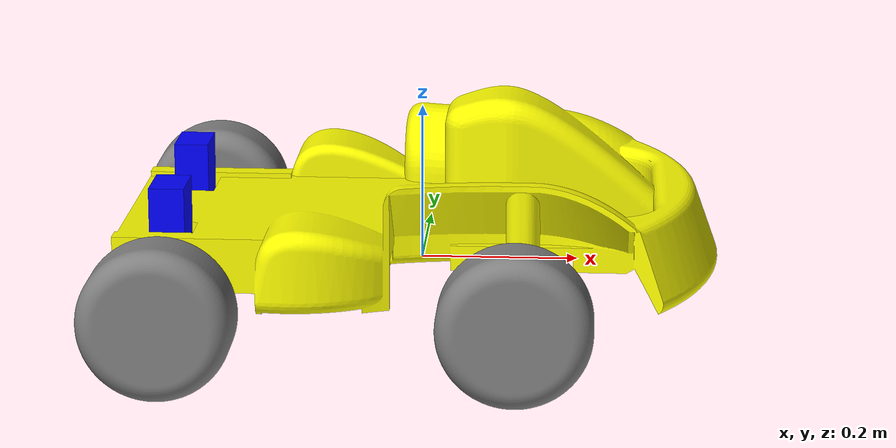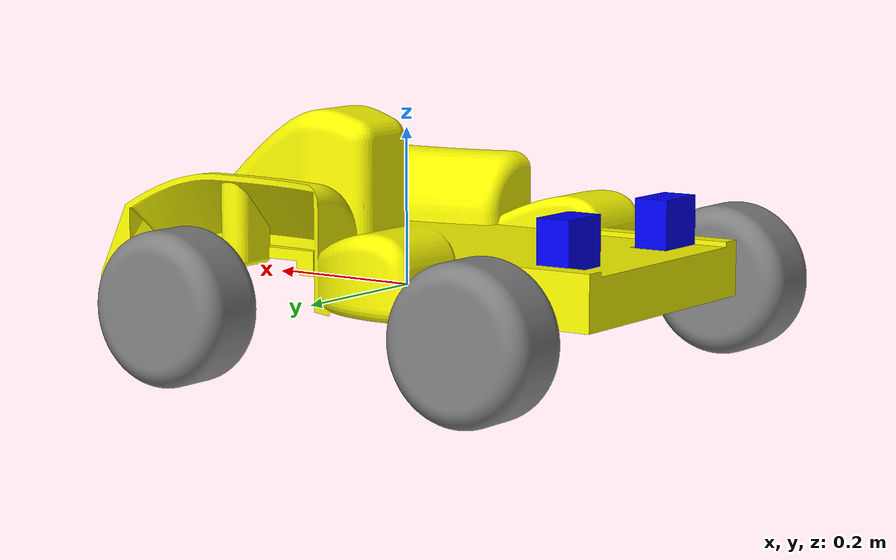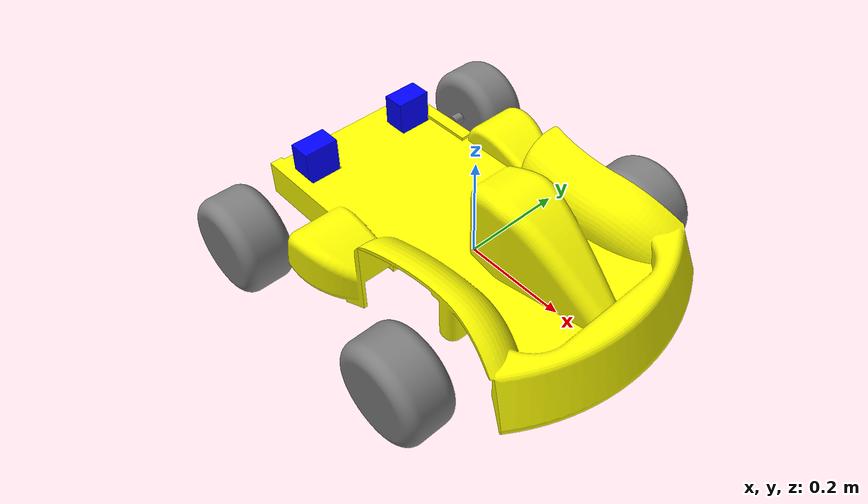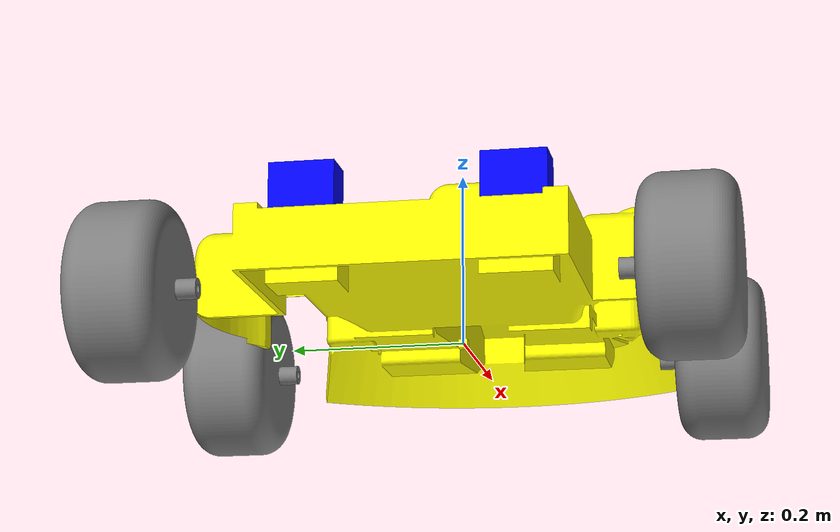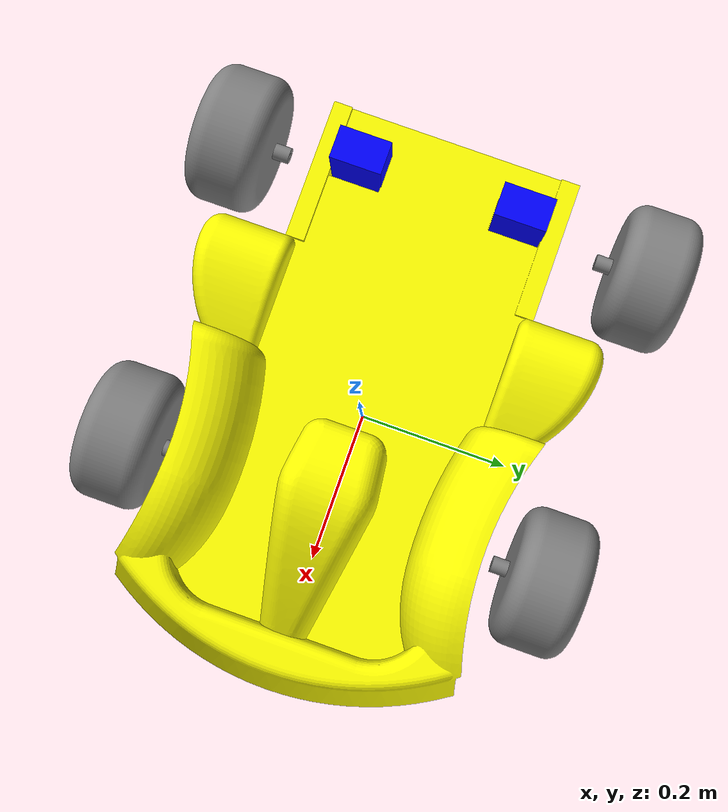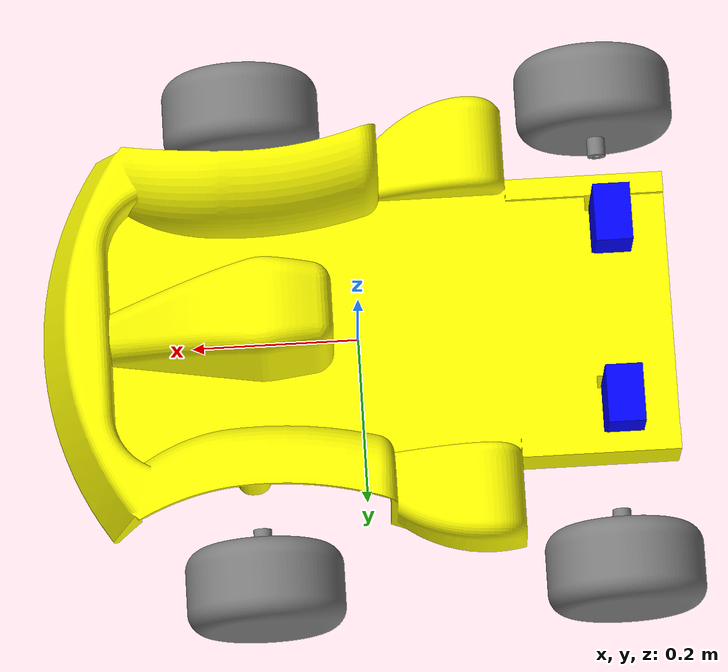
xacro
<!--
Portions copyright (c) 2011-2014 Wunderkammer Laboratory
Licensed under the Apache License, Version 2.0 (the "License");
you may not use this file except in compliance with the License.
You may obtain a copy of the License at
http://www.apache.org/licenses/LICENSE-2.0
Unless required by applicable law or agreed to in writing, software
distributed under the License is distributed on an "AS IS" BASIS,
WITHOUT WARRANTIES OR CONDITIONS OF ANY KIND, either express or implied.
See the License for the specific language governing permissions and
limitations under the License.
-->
<?xml version="1.0"?>

<robot name="SpongeBot" xmlns:xacro="http://www.ros.org/wiki/xacro">
  <!-- Degree-to-radian conversions -->
  <xacro:property name="degrees_45" value="0.785398163"/>
  <xacro:property name="degrees_90" value="1.57079633"/>

  <!-- chassis_length is measured along the x axis, chassis_width
       along the y axis, and chassis_height along the z axis. -->
  <xacro:property name="chassis_length" value="0.6223"/>
  <xacro:property name="chassis_width" value="0.3556"/>
  <xacro:property name="chassis_height" value="0.01"/>
  <xacro:property name="chassis_mass" value="2.788"/>

  <xacro:property name="battery_x_offset" value="-0.289"/>
  <xacro:property name="battery_dist" value="0.1524"/>
  <xacro:property name="battery_comp_depth" value="-0.0157"/>
  <xacro:property name="battery_comp_angle" value="0.0"/>
  <xacro:property name="battery_length" value="0.04445"/>
  <xacro:property name="battery_width" value="0.06985"/>
  <xacro:property name="battery_height" value="0.10795"/>
  <xacro:property name="battery_mass" value="0.850"/>

  <xacro:property name="hub_dia" value="0.09652"/>
  <xacro:property name="tire_dia" value="0.1905"/>
  <xacro:property name="tire_width" value="0.05"/>
  <xacro:property name="hex_hub_depth" value="0.01445"/>
  <xacro:property name="wheel_mass" value="0.10"/> <!-- TODO: Measure actual -->

  <!-- hex_hub_dist is the distance between left and right hex hubs.
       axle_length is the distance from a U joint to the corresponding hex hub. -->
  <xacro:property name="wheelbase" value="0.4318"/>
  <xacro:property name="hex_hub_dist" value="0.5016"/>
  <xacro:property name="axle_length" value="0.03"/>
  <xacro:property name="axle_frame_offset" value="0.0900"/>

  <xacro:property name="axle_eff_limit" value="5.12766"/>
  <xacro:property name="axle_vel_limit" value="244.8696"/>

  <!-- These constants are used to simulate a Traxxas 2056 servo operated at
       6 V. servo_stall_torque is measured in N m. servo_no_load_speed is
       measured in rad/s. -->
  <xacro:property name="servo_stall_torque" value="0.5649"/>
  <xacro:property name="servo_no_load_speed" value="4.553"/>

  <material name="battery_mat">
    <color rgba="0 0 1 1"/>
  </material>
  <material name="chassis_mat">
    <color rgba="1 1 0 1"/>
  </material>
  <material name="tire_mat">
    <color rgba="0.5 0.5 0.5 1"/>
  </material>

  <!-- Null inertial element. This is needed to make the model work with
       Gazebo. -->
  <xacro:macro name="null_inertial">
    <inertial>
      <mass value="0.001"/>
      <inertia ixx="0.001" ixy="0" ixz="0" iyy="0.001" iyz="0" izz="0.001"/>
    </inertial>
  </xacro:macro>

  <!-- Inertia of a solid cuboid. Width is measured along the x axis, depth
       along the y axis, and height along the z axis. -->
  <xacro:macro name="solid_cuboid_inertial"
               params="width depth height mass *origin">
    <inertial>
      <xacro:insert_block name="origin"/>
      <mass value="${mass}"/>
      <inertia ixx="${mass * (depth * depth + height * height) / 12}"
               ixy="0" ixz="0"
               iyy="${mass * (width * width + height * height) / 12}"
               iyz="0"
               izz="${mass * (width * width + depth * depth) / 12}"/>
    </inertial>
  </xacro:macro>

  <xacro:macro name="thick_walled_tube_inertial"
               params="inner_rad outer_rad height mass">
    <inertial>
      <mass value="${mass}"/>
      <inertia ixx="${(1 / 12) * mass * (3 * (inner_rad * inner_rad +
                    outer_rad * outer_rad) + height * height)}"
               ixy="0" ixz="0"
               iyy="${(1 / 12) * mass * (3 * (inner_rad * inner_rad +
                    outer_rad * outer_rad) + height * height)}"
               iyz="0"
               izz="${mass * (inner_rad * inner_rad +
                    outer_rad * outer_rad) / 2}"/>
    </inertial>
  </xacro:macro>

  <!-- Battery -->
  <xacro:macro name="battery" params="prefix reflect">
    <joint name="chassis_to_${prefix}_battery" type="fixed">
      <parent link="chassis"/>
      <child link="${prefix}_battery_offset"/>
      <origin xyz="${battery_x_offset - battery_length / 2}
                   ${reflect * battery_dist / 2}
                   0"
              rpy="${reflect * battery_comp_angle} 0 0"/>
    </joint>

    <link name="${prefix}_battery_offset">
      <xacro:null_inertial/>
    </link>

    <joint name="offset_to_${prefix}_battery" type="fixed">
      <parent link="${prefix}_battery_offset"/>
      <child link="${prefix}_battery"/>
      <origin xyz="0
                   ${reflect * battery_width / 2}
                   ${(battery_height / 2) - battery_comp_depth}"/>
    </joint>

    <link name="${prefix}_battery">
      <visual>
        <geometry>
          <box size="${battery_length} ${battery_width} ${battery_height}"/>
        </geometry>
        <material name="battery_mat"/>
      </visual>

      <collision>
        <geometry>
          <box size="${battery_length} ${battery_width} ${battery_height}"/>
        </geometry>
      </collision>

      <xacro:solid_cuboid_inertial
         width="${battery_length}" depth="${battery_width}"
         height="${battery_height}" mass="${battery_mass}">
        <origin/>
      </xacro:solid_cuboid_inertial>
    </link>
  </xacro:macro>

  <!-- The "wheel" macro defines an axle carrier, axle, and wheel. -->
  <xacro:macro name="wheel" params="lr_prefix fr_prefix lr_reflect">
    <link name="${lr_prefix}_${fr_prefix}_axle_carrier">
      <xacro:null_inertial/>
    </link>

    <!-- The left and right axles have the same axis so that identical
         rotation values cause the wheels to rotate in the same direction. -->
    <joint name="${lr_prefix}_${fr_prefix}_axle" type="continuous">
      <parent link="${lr_prefix}_${fr_prefix}_axle_carrier"/>
      <child link="${lr_prefix}_${fr_prefix}_wheel"/>
      <origin rpy="${degrees_90} 0 0"/>
      <axis xyz="0 0 1"/>
      <limit effort="${axle_eff_limit}" velocity="${axle_vel_limit}"/>
    </joint>
    <transmission name="${lr_prefix}_${fr_prefix}_axle_trans">
      <type>transmission_interface/SimpleTransmission</type>
      <joint name="${lr_prefix}_${fr_prefix}_axle">
        <hardwareInterface>EffortJointInterface</hardwareInterface>
      </joint>
      <actuator name="${lr_prefix}_${fr_prefix}_axle_act">
        <mechanicalReduction>1</mechanicalReduction>
      </actuator>
    </transmission>

    <link name="${lr_prefix}_${fr_prefix}_wheel">
      <visual>
        <origin xyz="0 0 0"/>
        <geometry>
          <mesh filename="package://pwrs_description/urdf/CarTyre_${lr_prefix}.stl" scale="0.01 0.01 0.01" />
        </geometry>
        <material name="tire_mat"/>
      </visual>

      <collision>
        <origin xyz="0
                     ${lr_reflect * (axle_length - (tire_width /
                     2 - hex_hub_depth))}
                     0"/>
        <geometry>
          <cylinder radius="${tire_dia / 2}" length="${tire_width}"/>
        </geometry>
      </collision>

      <xacro:thick_walled_tube_inertial
          inner_rad="${hub_dia / 2}" outer_rad="${tire_dia / 2}"
          height="${tire_width}" mass="${wheel_mass}"/>
    </link>
  </xacro:macro>

  <!-- Front wheel -->
  <xacro:macro name="front_wheel"
               params="lr_prefix fr_prefix lr_reflect fr_reflect">
    <joint name="${lr_prefix}_steering_mount" type="revolute">
      <parent link="chassis"/>
      <child link="${lr_prefix}_${fr_prefix}_axle_carrier"/>
      <origin xyz="${fr_reflect * wheelbase / 2 - axle_frame_offset}
                   ${lr_reflect * ((hex_hub_dist / 2) - axle_length)}
                   0"/>
      <axis xyz="0 0 1"/>
      <limit lower="${-degrees_45}" upper="${degrees_45}"
             effort="${servo_stall_torque}" velocity="${servo_no_load_speed}"/>
    </joint>
    <transmission name="${lr_prefix}_steering_trans">
      <type>transmission_interface/SimpleTransmission</type>
      <joint name="${lr_prefix}_steering_joint">
        <hardwareInterface>EffortJointInterface</hardwareInterface>
      </joint>
      <actuator name="${lr_prefix}_steering_act">
        <mechanicalReduction>1</mechanicalReduction>
      </actuator>
    </transmission>
    <xacro:wheel lr_prefix="${lr_prefix}" fr_prefix="${fr_prefix}"
                 lr_reflect="${lr_reflect}"/>
  </xacro:macro>

  <!-- Rear wheel -->
  <xacro:macro name="rear_wheel"
               params="lr_prefix fr_prefix lr_reflect fr_reflect">
    <joint name="${lr_prefix}_drive_mount" type="fixed">
      <parent link="chassis"/>
      <child link="${lr_prefix}_${fr_prefix}_axle_carrier"/>
      <origin xyz="${fr_reflect * wheelbase / 2 - axle_frame_offset}
                   ${lr_reflect * ((hex_hub_dist / 2) - axle_length)}
                   0"/>
    </joint>
    <xacro:wheel lr_prefix="${lr_prefix}" fr_prefix="${fr_prefix}"
                 lr_reflect="${lr_reflect}"/>
  </xacro:macro>

  <!-- base_link must have geometry so that its axes can be displayed in
       rviz. -->
  <link name="base_link">
    <visual>
      <geometry>
        <box size="0.01 0.01 0.01"/>
      </geometry>
      <material name="chassis_mat"/>
    </visual>
  </link>

  <!-- Chassis -->
  <link name="chassis">
    <visual>
      <origin xyz="0 0 ${-chassis_height / 2}"/>
      <geometry>
        <mesh filename="package://pwrs_description/urdf/CarBody.stl" scale="0.01 0.01 0.01" />
      </geometry>
      <material name="chassis_mat"/>
    </visual>

    <collision>
      <origin xyz="0 0 ${-chassis_height / 2}"/>
      <geometry>
        <box size="${chassis_length} ${chassis_width} ${chassis_height}"/>
      </geometry>
    </collision>

    <xacro:solid_cuboid_inertial
        width="${chassis_length}" depth="${chassis_width}"
        height="${chassis_height}" mass="${chassis_mass}">
      <origin xyz="0 0 ${chassis_height}"/>
    </xacro:solid_cuboid_inertial>
  </link>

  <joint name="base_link_to_chassis" type="fixed">
    <parent link="base_link"/>
    <child link="chassis"/>
  </joint>

  <link name="imu_link"/>

  <joint name="imu_joint" type="fixed">
    <parent link="chassis"/>
    <child link="imu_link"/>
    <origin xyz="0 0 0.0" rpy="0 0 0"/>
  </joint>

  <link name="odom_link"/>

  <joint name="odom_joint" type="fixed">
    <parent link="chassis"/>
    <child link="odom_link"/>
    <origin xyz="0 0 -0.24" rpy="0 0 0"/>
  </joint>

  <!-- Batteries -->
  <xacro:battery prefix="left" reflect="1"/>
  <xacro:battery prefix="right" reflect="-1"/>

  <!-- Wheels -->
  <xacro:front_wheel lr_prefix="left" fr_prefix="front"
                     lr_reflect="1" fr_reflect="1"/>
  <xacro:front_wheel lr_prefix="right" fr_prefix="front"
                     lr_reflect="-1" fr_reflect="1"/>
  <xacro:rear_wheel lr_prefix="left" fr_prefix="rear"
                    lr_reflect="1" fr_reflect="-1"/>
  <xacro:rear_wheel lr_prefix="right" fr_prefix="rear"
                    lr_reflect="-1" fr_reflect="-1"/>

</robot>
